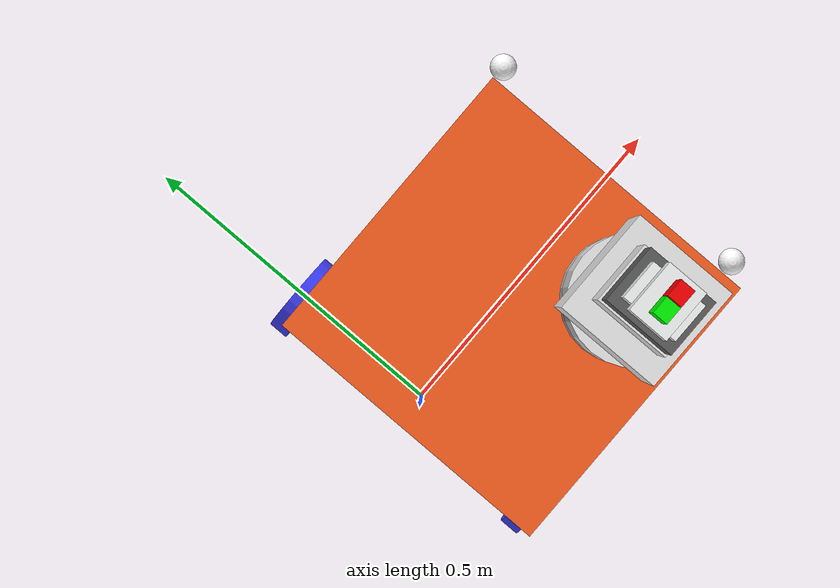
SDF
<sdf version='1.9'>
  <model name='robot_description'>
    <link name='base_link'>
      <inertial>
        <pose>0.1775121526790665 -1.246428622202242e-05 0.447548735359128 0 0 0</pose>
        <mass>10.001246584</mass>
        <inertia>
          <ixx>0.56889291339722137</ixx>
          <ixy>1.215267906647185e-05</ixy>
          <ixz>-4.7516975150041503e-05</ixz>
          <iyy>0.56889229797309016</iyy>
          <iyz>4.8735359128107691e-05</iyz>
          <izz>0.2734033022171119</izz>
        </inertia>
      </inertial>
      <collision name='base_link_fixed_joint_lump__chassis_collision'>
        <pose>0.1775 0 0.4475 0 0 0</pose>
        <geometry>
          <box>
            <size>0.405 0.405 0.72</size>
          </box>
        </geometry>
      </collision>
      <collision name='base_link_fixed_joint_lump__robot_link0_collision_1'>
        <pose>0.275 -0.1 0.8385 0 0 0</pose>
        <geometry>
          <cylinder>
            <length>0.062</length>
            <radius>0.080000000000000002</radius>
          </cylinder>
        </geometry>
      </collision>
      <visual name='base_link_fixed_joint_lump__chassis_visual'>
        <pose>0.1775 0 0.4475 0 0 0</pose>
        <geometry>
          <box>
            <size>0.405 0.405 0.72</size>
          </box>
        </geometry>
        <material>
          <diffuse>1 0.375 0.125 1</diffuse>
          <ambient>1 0.375 0.125 1</ambient>
        </material>
      </visual>
      <visual name='base_link_fixed_joint_lump__robot_link0_visual_1'>
        <pose>0.275 -0.1 0.8385 0 0 0</pose>
        <geometry>
          <cylinder>
            <length>0.062</length>
            <radius>0.080000000000000002</radius>
          </cylinder>
        </geometry>
        <material>
          <diffuse>0.941175 0.941175 0.941175 1</diffuse>
          <ambient>0.941175 0.941175 0.941175 1</ambient>
        </material>
      </visual>
    </link>
    <joint name='caster_wheel_joint' type='ball'>
      <pose relative_to='base_link'>0.45 0.2225 0.02000000000000001 0 0 0</pose>
      <parent>base_link</parent>
      <child>caster_wheel</child>
    </joint>
    <link name='caster_wheel'>
      <pose relative_to='caster_wheel_joint'>0 0 0 0 0 0</pose>
      <inertial>
        <pose>0 0 0 0 0 0</pose>
        <mass>0.01</mass>
        <inertia>
          <ixx>1.5999999999999999e-06</ixx>
          <ixy>0</ixy>
          <ixz>0</ixz>
          <iyy>1.5999999999999999e-06</iyy>
          <iyz>0</iyz>
          <izz>1.5999999999999999e-06</izz>
        </inertia>
      </inertial>
      <collision name='caster_wheel_collision'>
        <pose>0 0 0 0 0 0</pose>
        <geometry>
          <sphere>
            <radius>0.02</radius>
          </sphere>
        </geometry>
      </collision>
      <visual name='caster_wheel_visual'>
        <pose>0 0 0 0 0 0</pose>
        <geometry>
          <sphere>
            <radius>0.02</radius>
          </sphere>
        </geometry>
        <material>
          <diffuse>1 1 1 1</diffuse>
          <ambient>1 1 1 1</ambient>
        </material>
      </visual>
    </link>
    <joint name='caster_wheel_joint2' type='ball'>
      <pose relative_to='base_link'>0.45 -0.2225 0.02000000000000001 0 0 0</pose>
      <parent>base_link</parent>
      <child>caster_wheel2</child>
    </joint>
    <link name='caster_wheel2'>
      <pose relative_to='caster_wheel_joint2'>0 0 0 0 0 0</pose>
      <inertial>
        <pose>0 0 0 0 0 0</pose>
        <mass>0.01</mass>
        <inertia>
          <ixx>1.5999999999999999e-06</ixx>
          <ixy>0</ixy>
          <ixz>0</ixz>
          <iyy>1.5999999999999999e-06</iyy>
          <iyz>0</iyz>
          <izz>1.5999999999999999e-06</izz>
        </inertia>
      </inertial>
      <collision name='caster_wheel2_collision'>
        <pose>0 0 0 0 0 0</pose>
        <geometry>
          <sphere>
            <radius>0.02</radius>
          </sphere>
        </geometry>
      </collision>
      <visual name='caster_wheel2_visual'>
        <pose>0 0 0 0 0 0</pose>
        <geometry>
          <sphere>
            <radius>0.02</radius>
          </sphere>
        </geometry>
        <material>
          <diffuse>1 1 1 1</diffuse>
          <ambient>1 1 1 1</ambient>
        </material>
      </visual>
    </link>
    <joint name='robot_joint1' type='revolute'>
      <pose relative_to='base_link'>0.275 -0.1 0.8695000000000001 0 0 0</pose>
      <parent>base_link</parent>
      <child>robot_link1</child>
      <axis>
        <xyz>0 0 1</xyz>
        <limit>
          <lower>-1.570796326794897</lower>
          <upper>1.570796326794897</upper>
          <effort>100</effort>
          <velocity>100</velocity>
        </limit>
        <dynamics>
          <damping>0.01</damping>
          <friction>0.01</friction>
          <spring_reference>0</spring_reference>
          <spring_stiffness>0</spring_stiffness>
        </dynamics>
      </axis>
    </joint>
    <link name='robot_link1'>
      <pose relative_to='robot_joint1'>0 0 0 0 0 0</pose>
      <inertial>
        <pose>0 0 0.08275 0 0 0</pose>
        <mass>0.0033275750000000002</mass>
        <inertia>
          <ixx>1.291937926197917e-05</ixx>
          <ixy>0</ixy>
          <ixz>0</ixz>
          <iyy>1.291937926197917e-05</iyy>
          <iyz>0</iyz>
          <izz>1.064824e-05</izz>
        </inertia>
      </inertial>
      <collision name='robot_link1_collision'>
        <pose>0 0 0.08275 0 0 0</pose>
        <geometry>
          <cylinder>
            <length>0.16550000000000001</length>
            <radius>0.080000000000000002</radius>
          </cylinder>
        </geometry>
      </collision>
      <visual name='robot_link1_visual'>
        <pose>0 0 0.08275 0 0 0</pose>
        <geometry>
          <cylinder>
            <length>0.16550000000000001</length>
            <radius>0.080000000000000002</radius>
          </cylinder>
        </geometry>
        <material>
          <diffuse>0.941175 0.941175 0.941175 1</diffuse>
          <ambient>0.941175 0.941175 0.941175 1</ambient>
        </material>
      </visual>
    </link>
    <joint name='robot_joint2' type='revolute'>
      <pose relative_to='robot_link1'>0 0 0.1655 0 0 0</pose>
      <parent>robot_link1</parent>
      <child>robot_link2</child>
      <axis>
        <xyz>1 0 0</xyz>
        <limit>
          <lower>-1.570796327</lower>
          <upper>1.570796327</upper>
          <effort>5</effort>
          <velocity>1</velocity>
        </limit>
        <dynamics>
          <damping>0.01</damping>
          <friction>0.01</friction>
          <spring_reference>0</spring_reference>
          <spring_stiffness>0</spring_stiffness>
        </dynamics>
      </axis>
    </joint>
    <link name='robot_link2'>
      <pose relative_to='robot_joint2'>0 0 0 0 0 0</pose>
      <inertial>
        <pose>0 0 0.1101 0 0 0</pose>
        <mass>0.0039893990000000002</mass>
        <inertia>
          <ixx>2.214289318956667e-05</ixx>
          <ixy>0</ixy>
          <ixz>0</ixz>
          <iyy>2.214289318956667e-05</iyy>
          <iyz>0</iyz>
          <izz>1.2046096664473331e-05</izz>
        </inertia>
      </inertial>
      <collision name='robot_link2_collision'>
        <pose>0 0 0.1101 0 0 0</pose>
        <geometry>
          <box>
            <size>0.1346 0.1346 0.2202</size>
          </box>
        </geometry>
      </collision>
      <visual name='robot_link2_visual'>
        <pose>0 0 0.1101 0 0 0</pose>
        <geometry>
          <box>
            <size>0.1346 0.1346 0.2202</size>
          </box>
        </geometry>
        <material>
          <diffuse>0.941175 0.941175 0.941175 1</diffuse>
          <ambient>0.941175 0.941175 0.941175 1</ambient>
        </material>
      </visual>
    </link>
    <joint name='robot_joint3' type='revolute'>
      <pose relative_to='robot_link2'>0 0 0.2202 0 0 0</pose>
      <parent>robot_link2</parent>
      <child>robot_link3</child>
      <axis>
        <xyz>1 0 0</xyz>
        <limit>
          <lower>-1.6499999999999999</lower>
          <upper>1.6499999999999999</upper>
          <effort>5</effort>
          <velocity>1</velocity>
        </limit>
        <dynamics>
          <damping>0.01</damping>
          <friction>0.01</friction>
          <spring_reference>0</spring_reference>
          <spring_stiffness>0</spring_stiffness>
        </dynamics>
      </axis>
    </joint>
    <link name='robot_link3'>
      <pose relative_to='robot_joint3'>0 0 0 0 0 0</pose>
      <inertial>
        <pose>0 0 0.06494999999999999 0 0 0</pose>
        <mass>0.000957623</mass>
        <inertia>
          <ixx>2.066790637769167e-06</ixx>
          <ixy>0</ixy>
          <ixz>0</ixz>
          <iyy>1.827126329559166e-06</iyy>
          <iyz>0</iyz>
          <izz>1.2007602876233331e-06</izz>
        </inertia>
      </inertial>
      <collision name='robot_link3_collision'>
        <pose>0 0 0.06494999999999999 0 0 0</pose>
        <geometry>
          <box>
            <size>0.0776 0.095 0.1299</size>
          </box>
        </geometry>
      </collision>
      <visual name='robot_link3_visual'>
        <pose>0 0 0.06494999999999999 0 0 0</pose>
        <geometry>
          <box>
            <size>0.0776 0.095 0.1299</size>
          </box>
        </geometry>
        <material>
          <diffuse>0.941175 0.941175 0.941175 1</diffuse>
          <ambient>0.941175 0.941175 0.941175 1</ambient>
        </material>
      </visual>
    </link>
    <joint name='robot_joint4' type='revolute'>
      <pose relative_to='robot_link3'>0 0 0.1299 0 0 0</pose>
      <parent>robot_link3</parent>
      <child>robot_link4</child>
      <axis>
        <xyz>0 0 1</xyz>
        <limit>
          <lower>-3.1400000000000001</lower>
          <upper>3.1400000000000001</upper>
          <effort>5</effort>
          <velocity>1</velocity>
        </limit>
        <dynamics>
          <damping>0.01</damping>
          <friction>0.01</friction>
          <spring_reference>0</spring_reference>
          <spring_stiffness>0</spring_stiffness>
        </dynamics>
      </axis>
    </joint>
    <link name='robot_link4'>
      <pose relative_to='robot_joint4'>0 0 0 0 0 0</pose>
      <inertial>
        <pose>0 0 0.04745 0 0 0</pose>
        <mass>0.00060795700000000001</mass>
        <inertia>
          <ixx>8.5847682772833327e-07</ixx>
          <ixy>0</ixy>
          <ixz>0</ixz>
          <iyy>7.1818061736166661e-07</iyy>
          <iyz>0</iyz>
          <izz>6.6411297482833318e-07</izz>
        </inertia>
      </inertial>
      <collision name='robot_link4_collision'>
        <pose>0 0 0.04745 0 0 0</pose>
        <geometry>
          <box>
            <size>0.0719 0.0891 0.0949</size>
          </box>
        </geometry>
      </collision>
      <visual name='robot_link4_visual'>
        <pose>0 0 0.04745 0 0 0</pose>
        <geometry>
          <box>
            <size>0.0719 0.0891 0.0949</size>
          </box>
        </geometry>
        <material>
          <diffuse>0.36765 0.36765 0.36765 1</diffuse>
          <ambient>0.36765 0.36765 0.36765 1</ambient>
        </material>
      </visual>
    </link>
    <joint name='robot_joint5' type='revolute'>
      <pose relative_to='robot_link4'>0 0 0.0949 0 0 0</pose>
      <parent>robot_link4</parent>
      <child>robot_link5</child>
      <axis>
        <xyz>1 0 0</xyz>
        <limit>
          <lower>-1.570796327</lower>
          <upper>1.570796327</upper>
          <effort>5</effort>
          <velocity>1</velocity>
        </limit>
        <dynamics>
          <damping>0.01</damping>
          <friction>0.01</friction>
          <spring_reference>0</spring_reference>
          <spring_stiffness>0</spring_stiffness>
        </dynamics>
      </axis>
    </joint>
    <link name='robot_link5'>
      <pose relative_to='robot_joint5'>0 0 0 0 0 0</pose>
      <inertial>
        <pose>0 0 0.0255 0 0 0</pose>
        <mass>0.00017136000000000001</mass>
        <inertia>
          <ixx>1.0711428e-07</ixx>
          <ixy>0</ixy>
          <ixz>0</ixz>
          <iyy>7.0043399999999996e-08</iyy>
          <iyz>0</iyz>
          <izz>1.0287312e-07</izz>
        </inertia>
      </inertial>
      <collision name='robot_link5_collision'>
        <pose>0 0 0.0255 0 0 0</pose>
        <geometry>
          <box>
            <size>0.048 0.07 0.051</size>
          </box>
        </geometry>
      </collision>
      <visual name='robot_link5_visual'>
        <pose>0 0 0.0255 0 0 0</pose>
        <geometry>
          <box>
            <size>0.048 0.07 0.051</size>
          </box>
        </geometry>
        <material>
          <diffuse>0.9902 1 1 1</diffuse>
          <ambient>0.9902 1 1 1</ambient>
        </material>
      </visual>
    </link>
    <joint name='robot_joint6' type='revolute'>
      <pose relative_to='robot_link5'>0 0 0.051 0 0 0</pose>
      <parent>robot_link5</parent>
      <child>robot_link6</child>
      <axis>
        <xyz>0 0 1</xyz>
        <limit>
          <lower>-3</lower>
          <upper>3</upper>
          <effort>5</effort>
          <velocity>1</velocity>
        </limit>
        <dynamics>
          <damping>0.01</damping>
          <friction>0.01</friction>
          <spring_reference>0</spring_reference>
          <spring_stiffness>0</spring_stiffness>
        </dynamics>
      </axis>
    </joint>
    <link name='robot_link6'>
      <pose relative_to='robot_joint6'>0 0 0 0 0 0</pose>
      <inertial>
        <pose>0 0 0.0245 0 0 0</pose>
        <mass>0.000151743</mass>
        <inertia>
          <ixx>6.0722490500000012e-08</ixx>
          <ixy>-4.1322064518930943e-18</ixy>
          <ixz>0</ixz>
          <iyy>8.086940861000002e-08</iyy>
          <iyz>0</iyz>
          <izz>8.0869408610000007e-08</izz>
        </inertia>
      </inertial>
      <collision name='robot_link6_fixed_joint_lump__robot_hand_collision'>
        <pose>0 0 0.0245 0 0 1.570796327</pose>
        <geometry>
          <box>
            <size>0.049 0.0632 0.049</size>
          </box>
        </geometry>
      </collision>
      <visual name='robot_link6_fixed_joint_lump__robot_hand_visual'>
        <pose>0 0 0.0245 0 0 1.570796327</pose>
        <geometry>
          <box>
            <size>0.049 0.0632 0.049</size>
          </box>
        </geometry>
        <material>
          <diffuse>0.9902 1 1 1</diffuse>
          <ambient>0.9902 1 1 1</ambient>
        </material>
      </visual>
    </link>
    <joint name='robot_finger_joint1' type='revolute'>
      <pose relative_to='robot_link6'>-0.014 -2.871447871144461e-12 0.022 0 0 1.570796327</pose>
      <parent>robot_link6</parent>
      <child>Gripper_Servo_Gear</child>
      <axis>
        <xyz>1 0 0</xyz>
        <limit>
          <lower>-1.5</lower>
          <upper>1.5</upper>
          <effort>5</effort>
          <velocity>1</velocity>
        </limit>
        <dynamics>
          <damping>0.01</damping>
          <friction>0.01</friction>
          <spring_reference>0</spring_reference>
          <spring_stiffness>0</spring_stiffness>
        </dynamics>
      </axis>
    </joint>
    <link name='Gripper_Servo_Gear'>
      <pose relative_to='robot_finger_joint1'>0 0 0 0 0 0</pose>
      <inertial>
        <pose>0 0 0.01995 0 0 0</pose>
        <mass>0.00047620778519947399</mass>
        <inertia>
          <ixx>0.001</ixx>
          <ixy>0</ixy>
          <ixz>0</ixz>
          <iyy>0.001</iyy>
          <iyz>0</iyz>
          <izz>0.001</izz>
        </inertia>
      </inertial>
      <collision name='Gripper_Servo_Gear_collision'>
        <pose>0 0 0.01995 0 0 0</pose>
        <geometry>
          <box>
            <size>0.006 0.006 0.0399</size>
          </box>
        </geometry>
      </collision>
      <visual name='Gripper_Servo_Gear_visual'>
        <pose>0 0 0.01995 0 0 0</pose>
        <geometry>
          <box>
            <size>0.006 0.006 0.0399</size>
          </box>
        </geometry>
        <material>
          <diffuse>1 0.553925 0.0392163 1</diffuse>
          <ambient>1 0.553925 0.0392163 1</ambient>
        </material>
      </visual>
    </link>
    <joint name='Tip_Gripper_Servo_Joint' type='revolute'>
      <pose relative_to='Gripper_Servo_Gear'>0 0 0.04 0 0 0</pose>
      <parent>Gripper_Servo_Gear</parent>
      <child>robot_rightfinger</child>
      <axis>
        <xyz>1 0 0</xyz>
        <limit>
          <lower>-1.5</lower>
          <upper>1.5</upper>
          <effort>5</effort>
          <velocity>1</velocity>
        </limit>
        <dynamics>
          <damping>0.01</damping>
          <friction>0.01</friction>
          <spring_reference>0</spring_reference>
          <spring_stiffness>0</spring_stiffness>
        </dynamics>
      </axis>
    </joint>
    <link name='robot_rightfinger'>
      <pose relative_to='Tip_Gripper_Servo_Joint'>0 0 0 0 0 0</pose>
      <inertial>
        <pose>0 0.003 0.035 0 0 0</pose>
        <mass>0.00047620778519947399</mass>
        <inertia>
          <ixx>0.001</ixx>
          <ixy>0</ixy>
          <ixz>0</ixz>
          <iyy>0.001</iyy>
          <iyz>0</iyz>
          <izz>0.001</izz>
        </inertia>
      </inertial>
      <collision name='robot_rightfinger_collision'>
        <pose>0 -0.003 0.035 0 0 0</pose>
        <geometry>
          <box>
            <size>0.018 0.021 0.07</size>
          </box>
        </geometry>
      </collision>
      <visual name='robot_rightfinger_visual'>
        <pose>0 -0.003 0.035 0 0 0</pose>
        <geometry>
          <box>
            <size>0.018 0.021 0.07</size>
          </box>
        </geometry>
        <material>
          <diffuse>0 1 0 1</diffuse>
          <ambient>0 1 0 1</ambient>
        </material>
      </visual>
    </link>
    <joint name='robot_finger_joint2' type='revolute'>
      <pose relative_to='robot_link6'>0.014 2.871447871144461e-12 0.022 0 0 1.570796327</pose>
      <parent>robot_link6</parent>
      <child>Gripper_Idol_Gear</child>
      <axis>
        <xyz>1 0 0</xyz>
        <limit>
          <lower>-1.5</lower>
          <upper>1.5</upper>
          <effort>5</effort>
          <velocity>1</velocity>
        </limit>
        <dynamics>
          <damping>0.01</damping>
          <friction>0.01</friction>
          <spring_reference>0</spring_reference>
          <spring_stiffness>0</spring_stiffness>
        </dynamics>
      </axis>
    </joint>
    <link name='Gripper_Idol_Gear'>
      <pose relative_to='robot_finger_joint2'>0 0 0 0 0 0</pose>
      <inertial>
        <pose>0 0 0.01995 0 0 0</pose>
        <mass>0.00047620778519948099</mass>
        <inertia>
          <ixx>0.001</ixx>
          <ixy>0</ixy>
          <ixz>0</ixz>
          <iyy>0.001</iyy>
          <iyz>0</iyz>
          <izz>0.001</izz>
        </inertia>
      </inertial>
      <collision name='Gripper_Idol_Gear_collision'>
        <pose>0 0 0.01995 0 0 0</pose>
        <geometry>
          <box>
            <size>0.006 0.006 0.0399</size>
          </box>
        </geometry>
      </collision>
      <visual name='Gripper_Idol_Gear_visual'>
        <pose>0 0 0.01995 0 0 0</pose>
        <geometry>
          <box>
            <size>0.006 0.006 0.0399</size>
          </box>
        </geometry>
        <material>
          <diffuse>0.07353 0.808825 1 1</diffuse>
          <ambient>0.07353 0.808825 1 1</ambient>
        </material>
      </visual>
    </link>
    <joint name='Tip_Gripper_Idol_Joint' type='revolute'>
      <pose relative_to='Gripper_Idol_Gear'>0 0 0.04 0 0 0</pose>
      <parent>Gripper_Idol_Gear</parent>
      <child>robot_leftfinger</child>
      <axis>
        <xyz>1 0 0</xyz>
        <limit>
          <lower>-1.5</lower>
          <upper>1.5</upper>
          <effort>5</effort>
          <velocity>1</velocity>
        </limit>
        <dynamics>
          <damping>0.01</damping>
          <friction>0.01</friction>
          <spring_reference>0</spring_reference>
          <spring_stiffness>0</spring_stiffness>
        </dynamics>
      </axis>
    </joint>
    <link name='robot_leftfinger'>
      <pose relative_to='Tip_Gripper_Idol_Joint'>0 0 0 0 0 0</pose>
      <inertial>
        <pose>0 0.003 0.035 0 0 0</pose>
        <mass>0.00047620778519948099</mass>
        <inertia>
          <ixx>0.001</ixx>
          <ixy>0</ixy>
          <ixz>0</ixz>
          <iyy>0.001</iyy>
          <iyz>0</iyz>
          <izz>0.001</izz>
        </inertia>
      </inertial>
      <collision name='robot_leftfinger_collision'>
        <pose>0 0.003 0.035 0 0 0</pose>
        <geometry>
          <box>
            <size>0.018 0.021 0.07</size>
          </box>
        </geometry>
      </collision>
      <visual name='robot_leftfinger_visual'>
        <pose>0 0.003 0.035 0 0 0</pose>
        <geometry>
          <box>
            <size>0.018 0.021 0.07</size>
          </box>
        </geometry>
        <material>
          <diffuse>1 0 0 1</diffuse>
          <ambient>1 0 0 1</ambient>
        </material>
      </visual>
    </link>
    <joint name='left_wheel_joint' type='revolute'>
      <pose relative_to='base_link'>0 0.2225 0.0625 -1.570796326794896 0 0</pose>
      <parent>base_link</parent>
      <child>left_wheel</child>
      <axis>
        <xyz>0 0 1</xyz>
        <limit>
          <lower>-10000000000000000</lower>
          <upper>10000000000000000</upper>
        </limit>
        <dynamics>
          <damping>21.75</damping>
          <friction>10.48</friction>
          <spring_reference>0</spring_reference>
          <spring_stiffness>0</spring_stiffness>
        </dynamics>
      </axis>
    </joint>
    <link name='left_wheel'>
      <pose relative_to='left_wheel_joint'>0 0 0 0 0 0</pose>
      <inertial>
        <pose>0 0 0 0 0 0</pose>
        <mass>0.050000000000000003</mass>
        <inertia>
          <ixx>5.2578124999999999e-05</ixx>
          <ixy>0</ixy>
          <ixz>0</ixz>
          <iyy>5.2578124999999999e-05</iyy>
          <iyz>0</iyz>
          <izz>9.7656250000000005e-05</izz>
        </inertia>
      </inertial>
      <collision name='left_wheel_collision'>
        <pose>0 0 0 0 0 0</pose>
        <geometry>
          <sphere>
            <radius>0.0625</radius>
          </sphere>
        </geometry>
      </collision>
      <visual name='left_wheel_visual'>
        <pose>0 0 0 0 0 0</pose>
        <geometry>
          <cylinder>
            <length>0.029999999999999999</length>
            <radius>0.0625</radius>
          </cylinder>
        </geometry>
        <material>
          <diffuse>0.25 0.25 1 1</diffuse>
          <ambient>0.25 0.25 1 1</ambient>
        </material>
      </visual>
    </link>
    <joint name='right_wheel_joint' type='revolute'>
      <pose relative_to='base_link'>0 -0.2225 0.0625 1.570796326794896 0 0</pose>
      <parent>base_link</parent>
      <child>right_wheel</child>
      <axis>
        <xyz>0 0 -1</xyz>
        <limit>
          <lower>-10000000000000000</lower>
          <upper>10000000000000000</upper>
        </limit>
        <dynamics>
          <damping>21.75</damping>
          <friction>10.48</friction>
          <spring_reference>0</spring_reference>
          <spring_stiffness>0</spring_stiffness>
        </dynamics>
      </axis>
    </joint>
    <link name='right_wheel'>
      <pose relative_to='right_wheel_joint'>0 0 0 0 0 0</pose>
      <inertial>
        <pose>0 0 0 0 0 0</pose>
        <mass>0.050000000000000003</mass>
        <inertia>
          <ixx>5.2578124999999999e-05</ixx>
          <ixy>0</ixy>
          <ixz>0</ixz>
          <iyy>5.2578124999999999e-05</iyy>
          <iyz>0</iyz>
          <izz>9.7656250000000005e-05</izz>
        </inertia>
      </inertial>
      <collision name='right_wheel_collision'>
        <pose>0 0 0 0 0 0</pose>
        <geometry>
          <sphere>
            <radius>0.0625</radius>
          </sphere>
        </geometry>
      </collision>
      <visual name='right_wheel_visual'>
        <pose>0 0 0 0 0 0</pose>
        <geometry>
          <cylinder>
            <length>0.029999999999999999</length>
            <radius>0.0625</radius>
          </cylinder>
        </geometry>
        <material>
          <diffuse>0.25 0.25 1 1</diffuse>
          <ambient>0.25 0.25 1 1</ambient>
        </material>
      </visual>
    </link>
    <plugin name='ignition::gazebo::systems::OdometryPublisher' filename='ignition-gazebo-odometry-publisher-system'>
      <odom_publish_frequency>50</odom_publish_frequency>
      <odom_topic>/odom</odom_topic>
      <odom_frame>odom</odom_frame>
      <robot_base_frame>base_link</robot_base_frame>
      <dimensions>3</dimensions>
    </plugin>
    <plugin name='ignition::gazebo::systems::JointStatePublisher' filename='libignition-gazebo-joint-state-publisher-system.so'/>
    <plugin name='ignition::gazebo::systems::DiffDrive' filename='libignition-gazebo-diff-drive-system.so'>
      <left_joint>left_wheel_joint</left_joint>
      <right_joint>right_wheel_joint</right_joint>
      <wheel_separation>0.445</wheel_separation>
      <wheel_radius>0.0625</wheel_radius>
      <odom_publish_frequency>0</odom_publish_frequency>
      <topic>cmd_vel</topic>
      <frame_id>odom_diff</frame_id>
      <child_frame_id>base_footprint</child_frame_id>
    </plugin>
    <plugin name='ignition::gazebo::systems::JointTrajectoryController' filename='libignition-gazebo-joint-trajectory-controller-system.so'>
      <topic>joint_trajectory</topic>
      <joint_name>robot_joint1</joint_name>
      <initial_position>0</initial_position>
      <position_p_gain>1.0</position_p_gain>
      <position_d_gain>0.01</position_d_gain>
      <position_i_gain>0.1</position_i_gain>
      <position_i_min>-0.2</position_i_min>
      <position_i_max>0.2</position_i_max>
      <position_cmd_min>-100</position_cmd_min>
      <position_cmd_max>100</position_cmd_max>
      <joint_name>robot_joint2</joint_name>
      <initial_position>0</initial_position>
      <position_p_gain>1.0</position_p_gain>
      <position_d_gain>0.01</position_d_gain>
      <position_i_gain>0.1</position_i_gain>
      <position_i_min>-0.2</position_i_min>
      <position_i_max>0.2</position_i_max>
      <position_cmd_min>-100</position_cmd_min>
      <position_cmd_max>100</position_cmd_max>
      <joint_name>robot_joint3</joint_name>
      <initial_position>0</initial_position>
      <position_p_gain>1.0</position_p_gain>
      <position_d_gain>0.01</position_d_gain>
      <position_i_gain>0.1</position_i_gain>
      <position_i_min>-0.2</position_i_min>
      <position_i_max>0.2</position_i_max>
      <position_cmd_min>-100</position_cmd_min>
      <position_cmd_max>100</position_cmd_max>
      <joint_name>robot_joint4</joint_name>
      <initial_position>0</initial_position>
      <position_p_gain>1.0</position_p_gain>
      <position_d_gain>0.01</position_d_gain>
      <position_i_gain>0.1</position_i_gain>
      <position_i_min>-0.2</position_i_min>
      <position_i_max>0.2</position_i_max>
      <position_cmd_min>-100</position_cmd_min>
      <position_cmd_max>100</position_cmd_max>
      <joint_name>robot_joint5</joint_name>
      <initial_position>0</initial_position>
      <position_p_gain>1.0</position_p_gain>
      <position_d_gain>0.01</position_d_gain>
      <position_i_gain>0.1</position_i_gain>
      <position_i_min>-0.2</position_i_min>
      <position_i_max>0.2</position_i_max>
      <position_cmd_min>-100</position_cmd_min>
      <position_cmd_max>100</position_cmd_max>
      <joint_name>robot_joint6</joint_name>
      <initial_position>0</initial_position>
      <position_p_gain>1.0</position_p_gain>
      <position_d_gain>0.01</position_d_gain>
      <position_i_gain>0.1</position_i_gain>
      <position_i_min>-0.2</position_i_min>
      <position_i_max>0.2</position_i_max>
      <position_cmd_min>-100</position_cmd_min>
      <position_cmd_max>100</position_cmd_max>
      <joint_name>robot_finger_joint1</joint_name>
      <initial_position>0</initial_position>
      <position_p_gain>1.0</position_p_gain>
      <position_d_gain>0.01</position_d_gain>
      <position_i_gain>0.1</position_i_gain>
      <position_i_min>-0.2</position_i_min>
      <position_i_max>0.2</position_i_max>
      <position_cmd_min>-100</position_cmd_min>
      <position_cmd_max>100</position_cmd_max>
      <joint_name>robot_finger_joint2</joint_name>
      <initial_position>0</initial_position>
      <position_p_gain>1.0</position_p_gain>
      <position_d_gain>0.01</position_d_gain>
      <position_i_gain>0.1</position_i_gain>
      <position_i_min>-0.2</position_i_min>
      <position_i_max>0.2</position_i_max>
      <position_cmd_min>-100</position_cmd_min>
      <position_cmd_max>100</position_cmd_max>
      <joint_name>Tip_Gripper_Servo_Joint</joint_name>
      <initial_position>0</initial_position>
      <position_p_gain>1.0</position_p_gain>
      <position_d_gain>0.01</position_d_gain>
      <position_i_gain>0.1</position_i_gain>
      <position_i_min>-0.2</position_i_min>
      <position_i_max>0.2</position_i_max>
      <position_cmd_min>-100</position_cmd_min>
      <position_cmd_max>100</position_cmd_max>
      <joint_name>Tip_Gripper_Idol_Joint</joint_name>
      <initial_position>0</initial_position>
      <position_p_gain>1.0</position_p_gain>
      <position_d_gain>0.01</position_d_gain>
      <position_i_gain>0.1</position_i_gain>
      <position_i_min>-0.2</position_i_min>
      <position_i_max>0.2</position_i_max>
      <position_cmd_min>-100</position_cmd_min>
      <position_cmd_max>100</position_cmd_max>
    </plugin>
    <frame name='base_footprint_joint' attached_to='base_link'>
      <pose>0 0 0 0 -0 0</pose>
    </frame>
    <frame name='base_footprint' attached_to='base_footprint_joint'/>
    <frame name='robot_joint0' attached_to='chassis'>
      <pose>0.3 -0.1 0.72 0 -0 0</pose>
    </frame>
    <frame name='robot_link0' attached_to='robot_joint0'/>
    <frame name='robot_camera_joint' attached_to='robot_hand'>
      <pose>0.0645 0 0.0685 0 -0 1.5708</pose>
    </frame>
    <frame name='robot_camera' attached_to='robot_camera_joint'/>
    <frame name='robot_hand_joint' attached_to='robot_link7'>
      <pose>0 0 0 0 -0 1.5708</pose>
    </frame>
    <frame name='robot_hand' attached_to='robot_hand_joint'/>
    <frame name='robot_joint7' attached_to='robot_link6'>
      <pose>0 0 0 0 -0 0</pose>
    </frame>
    <frame name='robot_link7' attached_to='robot_joint7'/>
    <frame name='chassis_joint' attached_to='floor'>
      <pose>-0.025 0 0.025 0 -0 0</pose>
    </frame>
    <frame name='chassis' attached_to='chassis_joint'/>
    <frame name='floor_joint' attached_to='base_link'>
      <pose>0 0 0.0625 0 -0 0</pose>
    </frame>
    <frame name='floor' attached_to='floor_joint'/>
  </model>
</sdf>
